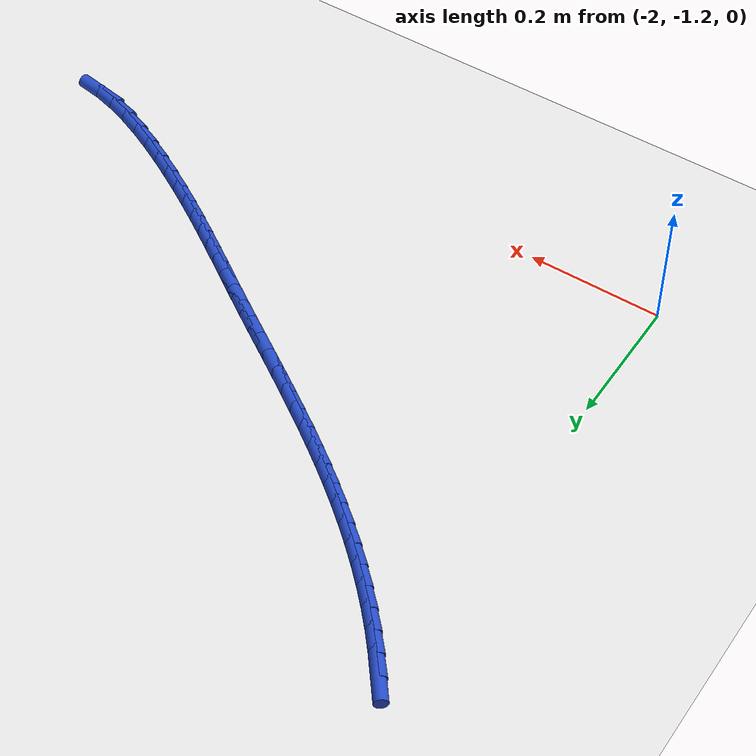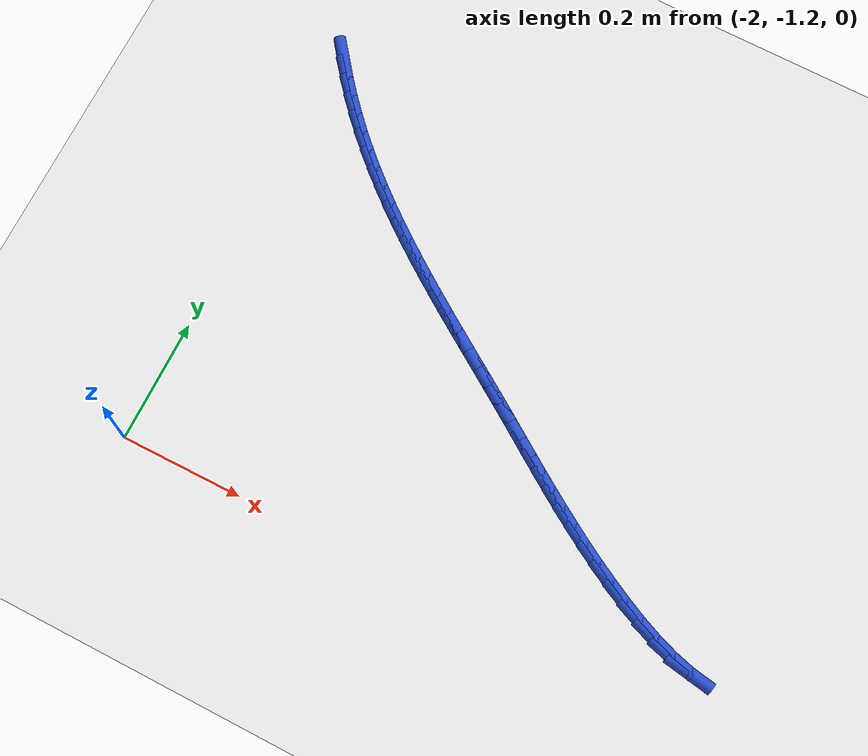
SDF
<sdf version="1.6">
 <world name="default">
  <model name="ground_plane">
   <static>1</static>
   <link name="link">
    <collision name="collision">
     <geometry><plane><normal>0 0 1</normal><size>100 100</size></plane></geometry>
     <surface><friction><ode><mu>100</mu><mu2>50</mu2></ode></friction></surface>
    </collision>
    <visual name="visual">
     <cast_shadows>0</cast_shadows>
     <geometry><plane><normal>0 0 1</normal><size>100 100</size></plane></geometry>
     <material>
      <script><uri>file://media/materials/scripts/gazebo.material</uri><name>Gazebo/WhiteGlow</name></script>
     </material>
    </visual>
   </link>
  </model>
  <model name="line">
   <link name="link_123">
    <pose>-1.9942325008166926 -0.49924090323083525 0.01 0 1.57 -0.9115394747101163</pose>
    <collision name="collision">
     <geometry><cylinder><radius>0.01</radius><length>0.08</length></cylinder></geometry>
    </collision>
    <visual name="visual">
     <material>
      <script><name>Gazebo/Blue</name><uri>file://media/materials/scripts/gazebo.material</uri></script>
     </material>
     <geometry><cylinder><radius>0.01</radius><length>0.08</length></cylinder></geometry>
    </visual>
   </link>
   <link name="link_124">
    <pose>-1.9742341984455558 -0.5250480006629237 0.01 0 1.57 -0.8757861770394972</pose>
    <collision name="collision">
     <geometry><cylinder><radius>0.01</radius><length>0.08</length></cylinder></geometry>
    </collision>
    <visual name="visual">
     <material>
      <script><name>Gazebo/Blue</name><uri>file://media/materials/scripts/gazebo.material</uri></script>
     </material>
     <geometry><cylinder><radius>0.01</radius><length>0.08</length></cylinder></geometry>
    </visual>
   </link>
   <link name="link_125">
    <pose>-1.953400580028662 -0.5500345268419262 0.01 0 1.57 -0.8416107173075299</pose>
    <collision name="collision">
     <geometry><cylinder><radius>0.01</radius><length>0.08</length></cylinder></geometry>
    </collision>
    <visual name="visual">
     <material>
      <script><name>Gazebo/Blue</name><uri>file://media/materials/scripts/gazebo.material</uri></script>
     </material>
     <geometry><cylinder><radius>0.01</radius><length>0.08</length></cylinder></geometry>
    </visual>
   </link>
   <link name="link_126">
    <pose>-1.9317763340512222 -0.574237557862901 0.01 0 1.57 -0.8091009641314139</pose>
    <collision name="collision">
     <geometry><cylinder><radius>0.01</radius><length>0.08</length></cylinder></geometry>
    </collision>
    <visual name="visual">
     <material>
      <script><name>Gazebo/Blue</name><uri>file://media/materials/scripts/gazebo.material</uri></script>
     </material>
     <geometry><cylinder><radius>0.01</radius><length>0.08</length></cylinder></geometry>
    </visual>
   </link>
   <link name="link_127">
    <pose>-1.9094061489984469 -0.5976941698209082 0.01 0 1.57 -0.7783232963361758</pose>
    <collision name="collision">
     <geometry><cylinder><radius>0.01</radius><length>0.08</length></cylinder></geometry>
    </collision>
    <visual name="visual">
     <material>
      <script><name>Gazebo/Blue</name><uri>file://media/materials/scripts/gazebo.material</uri></script>
     </material>
     <geometry><cylinder><radius>0.01</radius><length>0.08</length></cylinder></geometry>
    </visual>
   </link>
   <link name="link_128">
    <pose>-1.8863347133555466 -0.6204414388110073 0.01 0 1.57 -0.7493245752756079</pose>
    <collision name="collision">
     <geometry><cylinder><radius>0.01</radius><length>0.08</length></cylinder></geometry>
    </collision>
    <visual name="visual">
     <material>
      <script><name>Gazebo/Blue</name><uri>file://media/materials/scripts/gazebo.material</uri></script>
     </material>
     <geometry><cylinder><radius>0.01</radius><length>0.08</length></cylinder></geometry>
    </visual>
   </link>
   <link name="link_129">
    <pose>-1.8626067156077313 -0.6425164409282577 0.01 0 1.57 -0.7221345087872482</pose>
    <collision name="collision">
     <geometry><cylinder><radius>0.01</radius><length>0.08</length></cylinder></geometry>
    </collision>
    <visual name="visual">
     <material>
      <script><name>Gazebo/Blue</name><uri>file://media/materials/scripts/gazebo.material</uri></script>
     </material>
     <geometry><cylinder><radius>0.01</radius><length>0.08</length></cylinder></geometry>
    </visual>
   </link>
   <link name="link_130">
    <pose>-1.8382668442402124 -0.6639562522677191 0.01 0 1.57 -0.6967682540465393</pose>
    <collision name="collision">
     <geometry><cylinder><radius>0.01</radius><length>0.08</length></cylinder></geometry>
    </collision>
    <visual name="visual">
     <material>
      <script><name>Gazebo/Blue</name><uri>file://media/materials/scripts/gazebo.material</uri></script>
     </material>
     <geometry><cylinder><radius>0.01</radius><length>0.08</length></cylinder></geometry>
    </visual>
   </link>
   <link name="link_131">
    <pose>-1.813359788767901 -0.6847979495366123 0.01 0 1.57 -0.6734069248119611</pose>
    <collision name="collision">
     <geometry><cylinder><radius>0.01</radius><length>0.08</length></cylinder></geometry>
    </collision>
    <visual name="visual">
     <material>
      <script><name>Gazebo/Blue</name><uri>file://media/materials/scripts/gazebo.material</uri></script>
     </material>
     <geometry><cylinder><radius>0.01</radius><length>0.08</length></cylinder></geometry>
    </visual>
   </link>
   <link name="link_132">
    <pose>-1.7879355571314723 -0.7050817712680248 0.01 0 1.57 -0.6526258356303295</pose>
    <collision name="collision">
     <geometry><cylinder><radius>0.01</radius><length>0.08</length></cylinder></geometry>
    </collision>
    <visual name="visual">
     <material>
      <script><name>Gazebo/Blue</name><uri>file://media/materials/scripts/gazebo.material</uri></script>
     </material>
     <geometry><cylinder><radius>0.01</radius><length>0.08</length></cylinder></geometry>
    </visual>
   </link>
   <link name="link_133">
    <pose>-1.7620618654133848 -0.7248584835577496 0.01 0 1.57 -0.6345120092993365</pose>
    <collision name="collision">
     <geometry><cylinder><radius>0.01</radius><length>0.08</length></cylinder></geometry>
    </collision>
    <visual name="visual">
     <material>
      <script><name>Gazebo/Blue</name><uri>file://media/materials/scripts/gazebo.material</uri></script>
     </material>
     <geometry><cylinder><radius>0.01</radius><length>0.08</length></cylinder></geometry>
    </visual>
   </link>
   <link name="link_134">
    <pose>-1.7358101106451902 -0.7441810408408713 0.01 0 1.57 -0.6190281399167724</pose>
    <collision name="collision">
     <geometry><cylinder><radius>0.01</radius><length>0.08</length></cylinder></geometry>
    </collision>
    <visual name="visual">
     <material>
      <script><name>Gazebo/Blue</name><uri>file://media/materials/scripts/gazebo.material</uri></script>
     </material>
     <geometry><cylinder><radius>0.01</radius><length>0.08</length></cylinder></geometry>
    </visual>
   </link>
   <link name="link_135">
    <pose>-1.7092516898584427 -0.7631023975524749 0.01 0 1.57 -0.6061406748637161</pose>
    <collision name="collision">
     <geometry><cylinder><radius>0.01</radius><length>0.08</length></cylinder></geometry>
    </collision>
    <visual name="visual">
     <material>
      <script><name>Gazebo/Blue</name><uri>file://media/materials/scripts/gazebo.material</uri></script>
     </material>
     <geometry><cylinder><radius>0.01</radius><length>0.08</length></cylinder></geometry>
    </visual>
   </link>
   <link name="link_136">
    <pose>-1.682458000084696 -0.7816755081276444 0.01 0 1.57 -0.5958228160789705</pose>
    <collision name="collision">
     <geometry><cylinder><radius>0.01</radius><length>0.08</length></cylinder></geometry>
    </collision>
    <visual name="visual">
     <material>
      <script><name>Gazebo/Blue</name><uri>file://media/materials/scripts/gazebo.material</uri></script>
     </material>
     <geometry><cylinder><radius>0.01</radius><length>0.08</length></cylinder></geometry>
    </visual>
   </link>
   <link name="link_137">
    <pose>-1.6555004383555043 -0.7999533270014653 0.01 0 1.57 -0.5880569582495027</pose>
    <collision name="collision">
     <geometry><cylinder><radius>0.01</radius><length>0.08</length></cylinder></geometry>
    </collision>
    <visual name="visual">
     <material>
      <script><name>Gazebo/Blue</name><uri>file://media/materials/scripts/gazebo.material</uri></script>
     </material>
     <geometry><cylinder><radius>0.01</radius><length>0.08</length></cylinder></geometry>
    </visual>
   </link>
   <link name="link_138">
    <pose>-1.6284504017024193 -0.8179888086090217 0.01 0 1.57 -0.5828366603152112</pose>
    <collision name="collision">
     <geometry><cylinder><radius>0.01</radius><length>0.08</length></cylinder></geometry>
    </collision>
    <visual name="visual">
     <material>
      <script><name>Gazebo/Blue</name><uri>file://media/materials/scripts/gazebo.material</uri></script>
     </material>
     <geometry><cylinder><radius>0.01</radius><length>0.08</length></cylinder></geometry>
    </visual>
   </link>
   <link name="link_139">
    <pose>-1.6013792871569963 -0.8358349073853976 0.01 0 1.57 -0.5801682330880404</pose>
    <collision name="collision">
     <geometry><cylinder><radius>0.01</radius><length>0.08</length></cylinder></geometry>
    </collision>
    <visual name="visual">
     <material>
      <script><name>Gazebo/Blue</name><uri>file://media/materials/scripts/gazebo.material</uri></script>
     </material>
     <geometry><cylinder><radius>0.01</radius><length>0.08</length></cylinder></geometry>
    </visual>
   </link>
   <link name="link_140">
    <pose>-1.5743584917507882 -0.8535445777656783 0.01 0 1.57 -0.5800720053206814</pose>
    <collision name="collision">
     <geometry><cylinder><radius>0.01</radius><length>0.08</length></cylinder></geometry>
    </collision>
    <visual name="visual">
     <material>
      <script><name>Gazebo/Blue</name><uri>file://media/materials/scripts/gazebo.material</uri></script>
     </material>
     <geometry><cylinder><radius>0.01</radius><length>0.08</length></cylinder></geometry>
    </visual>
   </link>
   <link name="link_141">
    <pose>-1.547459412515349 -0.8711707741849481 0.01 0 1.57 -0.5825833049358873</pose>
    <collision name="collision">
     <geometry><cylinder><radius>0.01</radius><length>0.08</length></cylinder></geometry>
    </collision>
    <visual name="visual">
     <material>
      <script><name>Gazebo/Blue</name><uri>file://media/materials/scripts/gazebo.material</uri></script>
     </material>
     <geometry><cylinder><radius>0.01</radius><length>0.08</length></cylinder></geometry>
    </visual>
   </link>
   <link name="link_142">
    <pose>-1.520753446482231 -0.8887664510782914 0.01 0 1.57 -0.5875977025324122</pose>
    <collision name="collision">
     <geometry><cylinder><radius>0.01</radius><length>0.08</length></cylinder></geometry>
    </collision>
    <visual name="visual">
     <material>
      <script><name>Gazebo/Blue</name><uri>file://media/materials/scripts/gazebo.material</uri></script>
     </material>
     <geometry><cylinder><radius>0.01</radius><length>0.08</length></cylinder></geometry>
    </visual>
   </link>
   <link name="link_143">
    <pose>-1.4943064711876697 -0.90638230441541 0.01 0 1.57 -0.5920082478868987</pose>
    <collision name="collision">
     <geometry><cylinder><radius>0.01</radius><length>0.08</length></cylinder></geometry>
    </collision>
    <visual name="visual">
     <material>
      <script><name>Gazebo/Blue</name><uri>file://media/materials/scripts/gazebo.material</uri></script>
     </material>
     <geometry><cylinder><radius>0.01</radius><length>0.08</length></cylinder></geometry>
    </visual>
   </link>
   <link name="link_144">
    <pose>-1.4680730141231415 -0.9240234679892111 0.01 0 1.57 -0.5928418391162383</pose>
    <collision name="collision">
     <geometry><cylinder><radius>0.01</radius><length>0.08</length></cylinder></geometry>
    </collision>
    <visual name="visual">
     <material>
      <script><name>Gazebo/Blue</name><uri>file://media/materials/scripts/gazebo.material</uri></script>
     </material>
     <geometry><cylinder><radius>0.01</radius><length>0.08</length></cylinder></geometry>
    </visual>
   </link>
   <link name="link_145">
    <pose>-1.441904285389497 -0.9416528002147382 0.01 0 1.57 -0.5899589057755225</pose>
    <collision name="collision">
     <geometry><cylinder><radius>0.01</radius><length>0.08</length></cylinder></geometry>
    </collision>
    <visual name="visual">
     <material>
      <script><name>Gazebo/Blue</name><uri>file://media/materials/scripts/gazebo.material</uri></script>
     </material>
     <geometry><cylinder><radius>0.01</radius><length>0.08</length></cylinder></geometry>
    </visual>
   </link>
   <link name="link_146">
    <pose>-1.4156475849468861 -0.9592315595568724 0.01 0 1.57 -0.5834040076430851</pose>
    <collision name="collision">
     <geometry><cylinder><radius>0.01</radius><length>0.08</length></cylinder></geometry>
    </collision>
    <visual name="visual">
     <material>
      <script><name>Gazebo/Blue</name><uri>file://media/materials/scripts/gazebo.material</uri></script>
     </material>
     <geometry><cylinder><radius>0.01</radius><length>0.08</length></cylinder></geometry>
    </visual>
   </link>
   <link name="link_147">
    <pose>-1.3891502127554547 -0.9767210044804956 0.01 0 1.57 -0.5732948734336746</pose>
    <collision name="collision">
     <geometry><cylinder><radius>0.01</radius><length>0.08</length></cylinder></geometry>
    </collision>
    <visual name="visual">
     <material>
      <script><name>Gazebo/Blue</name><uri>file://media/materials/scripts/gazebo.material</uri></script>
     </material>
     <geometry><cylinder><radius>0.01</radius><length>0.08</length></cylinder></geometry>
    </visual>
   </link>
   <link name="link_148">
    <pose>-1.3622594687753513 -0.9940823934504898 0.01 0 1.57 -0.5598192573722356</pose>
    <collision name="collision">
     <geometry><cylinder><radius>0.01</radius><length>0.08</length></cylinder></geometry>
    </collision>
    <visual name="visual">
     <material>
      <script><name>Gazebo/Blue</name><uri>file://media/materials/scripts/gazebo.material</uri></script>
     </material>
     <geometry><cylinder><radius>0.01</radius><length>0.08</length></cylinder></geometry>
    </visual>
   </link>
   <link name="link_149">
    <pose>-1.334822652966724 -1.011276984931737 0.01 0 1.57 -0.5432293704451722</pose>
    <collision name="collision">
     <geometry><cylinder><radius>0.01</radius><length>0.08</length></cylinder></geometry>
    </collision>
    <visual name="visual">
     <material>
      <script><name>Gazebo/Blue</name><uri>file://media/materials/scripts/gazebo.material</uri></script>
     </material>
     <geometry><cylinder><radius>0.01</radius><length>0.08</length></cylinder></geometry>
    </visual>
   </link>
   <link name="link_150">
    <pose>-1.3066870652897196 -1.028266037389118 0.01 0 1.57 -0.5238338117909718</pose>
    <collision name="collision">
     <geometry><cylinder><radius>0.01</radius><length>0.08</length></cylinder></geometry>
    </collision>
    <visual name="visual">
     <material>
      <script><name>Gazebo/Blue</name><uri>file://media/materials/scripts/gazebo.material</uri></script>
     </material>
     <geometry><cylinder><radius>0.01</radius><length>0.08</length></cylinder></geometry>
    </visual>
   </link>
   <link name="link_151">
    <pose>-1.2777000057044858 -1.0450108092875159 0.01 0 1.57 -0.5019870868444701</pose>
    <collision name="collision">
     <geometry><cylinder><radius>0.01</radius><length>0.08</length></cylinder></geometry>
    </collision>
    <visual name="visual">
     <material>
      <script><name>Gazebo/Blue</name><uri>file://media/materials/scripts/gazebo.material</uri></script>
     </material>
     <geometry><cylinder><radius>0.01</radius><length>0.08</length></cylinder></geometry>
    </visual>
   </link>
   <link name="link_152">
    <pose>-1.2477087741711714 -1.0614725590918115 0.01 0 1.57 -0.4775358331696948</pose>
    <collision name="collision">
     <geometry><cylinder><radius>0.01</radius><length>0.08</length></cylinder></geometry>
    </collision>
    <visual name="visual">
     <material>
      <script><name>Gazebo/Blue</name><uri>file://media/materials/scripts/gazebo.material</uri></script>
     </material>
     <geometry><cylinder><radius>0.01</radius><length>0.08</length></cylinder></geometry>
    </visual>
   </link>
   <link name="link_153">
    <pose>-1.2165916087659665 -1.077575157186598 0.01 0 1.57 -0.44514579433352847</pose>
    <collision name="collision">
     <geometry><cylinder><radius>0.01</radius><length>0.08</length></cylinder></geometry>
    </collision>
    <visual name="visual">
     <material>
      <script><name>Gazebo/Blue</name><uri>file://media/materials/scripts/gazebo.material</uri></script>
     </material>
     <geometry><cylinder><radius>0.01</radius><length>0.08</length></cylinder></geometry>
    </visual>
   </link>
   <link name="link_154">
    <pose>-1.1845365926950515 -1.0928680324558635 0.01 0 1.57 -0.40058923431843035</pose>
    <collision name="collision">
     <geometry><cylinder><radius>0.01</radius><length>0.08</length></cylinder></geometry>
    </collision>
    <visual name="visual">
     <material>
      <script><name>Gazebo/Blue</name><uri>file://media/materials/scripts/gazebo.material</uri></script>
     </material>
     <geometry><cylinder><radius>0.01</radius><length>0.08</length></cylinder></geometry>
    </visual>
   </link>
   <link name="link_155">
    <pose>-1.1519103469509644 -1.1066848545214127 0.01 0 1.57 -0.3415996368637906</pose>
    <collision name="collision">
     <geometry><cylinder><radius>0.01</radius><length>0.08</length></cylinder></geometry>
    </collision>
    <visual name="visual">
     <material>
      <script><name>Gazebo/Blue</name><uri>file://media/materials/scripts/gazebo.material</uri></script>
     </material>
     <geometry><cylinder><radius>0.01</radius><length>0.08</length></cylinder></geometry>
    </visual>
   </link>
   <link name="link_156">
    <pose>-1.1190816404920212 -1.118356697232349 0.01 0 1.57 -0.2648269604117291</pose>
    <collision name="collision">
     <geometry><cylinder><radius>0.01</radius><length>0.08</length></cylinder></geometry>
    </collision>
    <visual name="visual">
     <material>
      <script><name>Gazebo/Blue</name><uri>file://media/materials/scripts/gazebo.material</uri></script>
     </material>
     <geometry><cylinder><radius>0.01</radius><length>0.08</length></cylinder></geometry>
    </visual>
   </link>
   <link name="link_157">
    <pose>-1.0864192422765393 -1.1272146344377756 0.01 0 1.57 -0.1657710296259924</pose>
    <collision name="collision">
     <geometry><cylinder><radius>0.01</radius><length>0.08</length></cylinder></geometry>
    </collision>
    <visual name="visual">
     <material>
      <script><name>Gazebo/Blue</name><uri>file://media/materials/scripts/gazebo.material</uri></script>
     </material>
     <geometry><cylinder><radius>0.01</radius><length>0.08</length></cylinder></geometry>
    </visual>
   </link>
  </model>
 </world>
</sdf>
